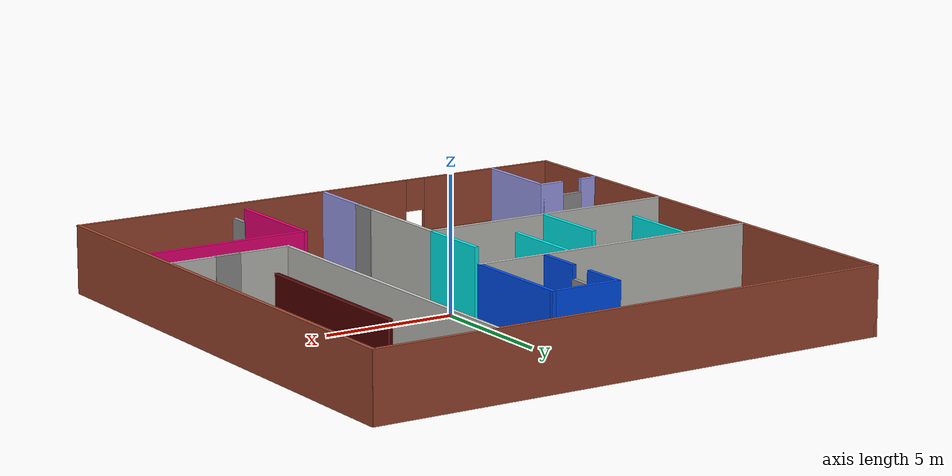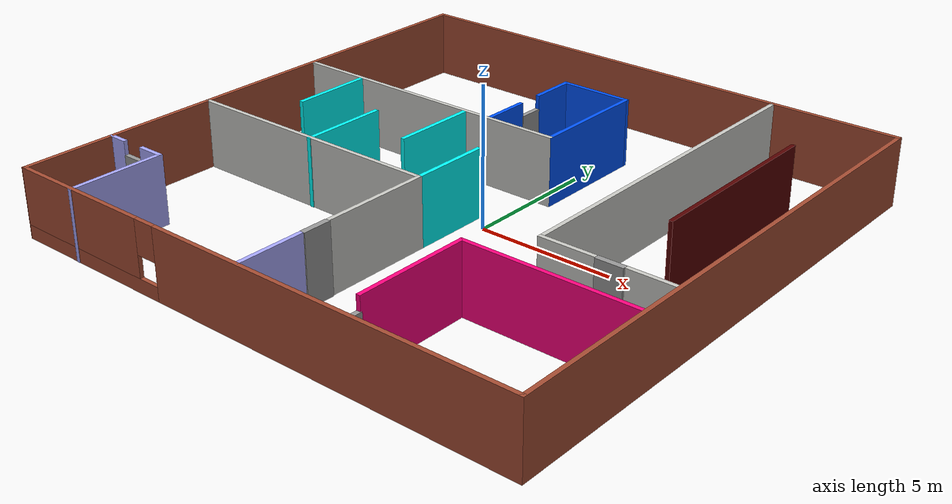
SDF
<?xml version='1.0'?>
<sdf version='1.6'>
  <model name='Building'>
    <pose frame=''>-0.603561 0.164235 0 0 -0 0</pose>
    <link name='Door_0'>
      <collision name='Door_0_Collision'>
        <geometry>
          <box>
            <size>0.972128 0.2 2.5</size>
          </box>
        </geometry>
        <pose frame=''>0 0 1.25 0 -0 0</pose>
      </collision>
      <visual name='Door_0_Visual'>
        <pose frame=''>0 0 1.25 0 -0 0</pose>
        <geometry>
          <box>
            <size>0.972128 0.2 2.5</size>
          </box>
        </geometry>
        <material>
          <script>
            <uri>file://media/materials/scripts/gazebo.material</uri>
            <name>Gazebo/Grey</name>
          </script>
        </material>
      </visual>
      <pose frame=''>7.70751 -3.24538 0 0 0 -3.13779</pose>
    </link>
    <link name='Door_1'>
      <collision name='Door_1_Collision'>
        <geometry>
          <box>
            <size>1.03118 0.2 2.5</size>
          </box>
        </geometry>
        <pose frame=''>0 0 1.25 0 -0 0</pose>
      </collision>
      <visual name='Door_1_Visual'>
        <pose frame=''>0 0 1.25 0 -0 0</pose>
        <geometry>
          <box>
            <size>1.03118 0.2 2.5</size>
          </box>
        </geometry>
        <material>
          <script>
            <uri>file://media/materials/scripts/gazebo.material</uri>
            <name>Gazebo/Grey</name>
          </script>
        </material>
      </visual>
      <pose frame=''>-0.048767 -6.92226 0 0 0 -1.57444</pose>
    </link>
    <link name='Door_2'>
      <collision name='Door_2_Collision'>
        <geometry>
          <box>
            <size>0.8 0.17 2</size>
          </box>
        </geometry>
        <pose frame=''>0 0 1 0 -0 0</pose>
      </collision>
      <visual name='Door_2_Visual'>
        <pose frame=''>0 0 1 0 -0 0</pose>
        <geometry>
          <box>
            <size>0.8 0.17 2</size>
          </box>
        </geometry>
        <material>
          <script>
            <uri>file://media/materials/scripts/gazebo.material</uri>
            <name>Gazebo/Grey</name>
          </script>
        </material>
      </visual>
      <pose frame=''>-8.84079 -6.58459 0 0 -0 0</pose>
    </link>
    <link name='Door_3'>
      <collision name='Door_3_Collision'>
        <geometry>
          <box>
            <size>0.9 0.17 2</size>
          </box>
        </geometry>
        <pose frame=''>0 0 1 0 -0 0</pose>
      </collision>
      <visual name='Door_3_Visual'>
        <pose frame=''>0 0 1 0 -0 0</pose>
        <geometry>
          <box>
            <size>0.9 0.17 2</size>
          </box>
        </geometry>
        <material>
          <script>
            <uri>file://media/materials/scripts/gazebo.material</uri>
            <name>Gazebo/Grey</name>
          </script>
        </material>
      </visual>
      <pose frame=''>-1.42795 4.80727 0 0 -0 1.55779</pose>
    </link>
    <link name='Door_4'>
      <collision name='Door_4_Collision'>
        <geometry>
          <box>
            <size>0.9 0.17 2</size>
          </box>
        </geometry>
        <pose frame=''>0 0 1 0 -0 0</pose>
      </collision>
      <visual name='Door_4_Visual'>
        <pose frame=''>0 0 1 0 -0 0</pose>
        <geometry>
          <box>
            <size>0.9 0.17 2</size>
          </box>
        </geometry>
        <material>
          <script>
            <uri>file://media/materials/scripts/gazebo.material</uri>
            <name>Gazebo/Grey</name>
          </script>
        </material>
      </visual>
      <pose frame=''>3.70998 -9.40953 0 0 -0 1.5725</pose>
    </link>
    <link name='Wall_23'>
      <collision name='Wall_23_Collision'>
        <geometry>
          <box>
            <size>20 0.15 2.5</size>
          </box>
        </geometry>
        <pose frame=''>0 0 1.25 0 -0 0</pose>
      </collision>
      <visual name='Wall_23_Visual'>
        <pose frame=''>0 0 1.25 0 -0 0</pose>
        <geometry>
          <box>
            <size>20 0.15 2.5</size>
          </box>
        </geometry>
        <material>
          <script>
            <uri>file://media/materials/scripts/gazebo.material</uri>
            <name>Gazebo/Bricks</name>
          </script>
          <ambient>1 1 1 1</ambient>
        </material>
      </visual>
      <pose frame=''>-9.93542 0.006571 0 0 -0 1.5708</pose>
    </link>
    <link name='Wall_28'>
      <collision name='Wall_28_Collision'>
        <geometry>
          <box>
            <size>20 0.15 2.5</size>
          </box>
        </geometry>
        <pose frame=''>0 0 1.25 0 -0 0</pose>
      </collision>
      <visual name='Wall_28_Visual'>
        <pose frame=''>0 0 1.25 0 -0 0</pose>
        <geometry>
          <box>
            <size>20 0.15 2.5</size>
          </box>
        </geometry>
        <material>
          <script>
            <uri>file://media/materials/scripts/gazebo.material</uri>
            <name>Gazebo/Bricks</name>
          </script>
          <ambient>1 1 1 1</ambient>
        </material>
      </visual>
      <pose frame=''>9.93542 0.005522 0 0 -0 1.5708</pose>
    </link>
    <link name='Wall_30'>
      <collision name='Wall_30_Collision'>
        <geometry>
          <box>
            <size>20 0.15 2.5</size>
          </box>
        </geometry>
        <pose frame=''>0 0 1.25 0 -0 0</pose>
      </collision>
      <visual name='Wall_30_Visual'>
        <pose frame=''>0 0 1.25 0 -0 0</pose>
        <geometry>
          <box>
            <size>20 0.15 2.5</size>
          </box>
        </geometry>
        <material>
          <script>
            <uri>file://media/materials/scripts/gazebo.material</uri>
            <name>Gazebo/Bricks</name>
          </script>
          <ambient>1 1 1 1</ambient>
        </material>
      </visual>
      <pose frame=''>-0.010419 9.93157 0 0 -0 0</pose>
    </link>
    <link name='Wall_32'>
      <pose frame=''>0.010419 -9.91948 0 0 -0 3.14159</pose>
      <visual name='Wall_32_Visual_0'>
        <pose frame=''>-3.18916 0 1.25 0 -0 0</pose>
        <geometry>
          <box>
            <size>13.6217 0.15 2.5</size>
          </box>
        </geometry>
        <material>
          <script>
            <uri>file://media/materials/scripts/gazebo.material</uri>
            <name>Gazebo/Bricks</name>
          </script>
          <ambient>1 1 1 1</ambient>
        </material>
      </visual>
      <collision name='Wall_32_Collision_0'>
        <geometry>
          <box>
            <size>13.6217 0.15 2.5</size>
          </box>
        </geometry>
        <pose frame=''>-3.18916 0 1.25 0 -0 0</pose>
      </collision>
      <visual name='Wall_32_Visual_1'>
        <pose frame=''>6.81084 0 0.25 0 -0 0</pose>
        <geometry>
          <box>
            <size>6.37833 0.15 0.5</size>
          </box>
        </geometry>
        <material>
          <script>
            <uri>file://media/materials/scripts/gazebo.material</uri>
            <name>Gazebo/Bricks</name>
          </script>
          <ambient>1 1 1 1</ambient>
        </material>
      </visual>
      <collision name='Wall_32_Collision_1'>
        <geometry>
          <box>
            <size>6.37833 0.15 0.5</size>
          </box>
        </geometry>
        <pose frame=''>6.81084 0 0.25 0 -0 0</pose>
      </collision>
      <visual name='Wall_32_Visual_2'>
        <pose frame=''>7.21084 0 1.5 0 -0 0</pose>
        <geometry>
          <box>
            <size>5.57833 0.15 2</size>
          </box>
        </geometry>
        <material>
          <script>
            <uri>file://media/materials/scripts/gazebo.material</uri>
            <name>Gazebo/Bricks</name>
          </script>
          <ambient>1 1 1 1</ambient>
        </material>
      </visual>
      <collision name='Wall_32_Collision_2'>
        <geometry>
          <box>
            <size>5.57833 0.15 2</size>
          </box>
        </geometry>
        <pose frame=''>7.21084 0 1.5 0 -0 0</pose>
      </collision>
      <visual name='Wall_32_Visual_3'>
        <pose frame=''>4.02168 0 1.9 0 -0 0</pose>
        <geometry>
          <box>
            <size>0.8 0.15 1.2</size>
          </box>
        </geometry>
        <material>
          <script>
            <uri>file://media/materials/scripts/gazebo.material</uri>
            <name>Gazebo/Bricks</name>
          </script>
          <ambient>1 1 1 1</ambient>
        </material>
      </visual>
      <collision name='Wall_32_Collision_3'>
        <geometry>
          <box>
            <size>0.8 0.15 1.2</size>
          </box>
        </geometry>
        <pose frame=''>4.02168 0 1.9 0 -0 0</pose>
      </collision>
    </link>
    <link name='Wall_34'>
      <collision name='Wall_34_Collision'>
        <geometry>
          <box>
            <size>13.25 0.15 2.5</size>
          </box>
        </geometry>
        <pose frame=''>0 0 1.25 0 -0 0</pose>
      </collision>
      <visual name='Wall_34_Visual'>
        <pose frame=''>0 0 1.25 0 -0 0</pose>
        <geometry>
          <box>
            <size>13.25 0.15 2.5</size>
          </box>
        </geometry>
        <material>
          <script>
            <uri>file://media/materials/scripts/gazebo.material</uri>
            <name>Gazebo/CeilingTiled</name>
          </script>
          <ambient>0.666667 0.666667 1 1</ambient>
        </material>
      </visual>
      <pose frame=''>5.2903 3.3163 0 0 0 -1.5708</pose>
    </link>
    <link name='Wall_35'>
      <collision name='Wall_35_Collision'>
        <geometry>
          <box>
            <size>2 0.15 2.5</size>
          </box>
        </geometry>
        <pose frame=''>0 0 1.25 0 -0 0</pose>
      </collision>
      <visual name='Wall_35_Visual'>
        <pose frame=''>0 0 1.25 0 -0 0</pose>
        <geometry>
          <box>
            <size>2 0.15 2.5</size>
          </box>
        </geometry>
        <material>
          <script>
            <uri>file://media/materials/scripts/gazebo.material</uri>
            <name>Gazebo/CeilingTiled</name>
          </script>
          <ambient>0.666667 0.666667 1 1</ambient>
        </material>
      </visual>
      <pose frame=''>6.2153 -3.2337 0 0 -0 0</pose>
    </link>
    <link name='Wall_37'>
      <collision name='Wall_37_Collision'>
        <geometry>
          <box>
            <size>1.75 0.15 2.5</size>
          </box>
        </geometry>
        <pose frame=''>0 0 1.25 0 -0 0</pose>
      </collision>
      <visual name='Wall_37_Visual'>
        <pose frame=''>0 0 1.25 0 -0 0</pose>
        <geometry>
          <box>
            <size>1.75 0.15 2.5</size>
          </box>
        </geometry>
        <material>
          <script>
            <uri>file://media/materials/scripts/gazebo.material</uri>
            <name>Gazebo/CeilingTiled</name>
          </script>
          <ambient>0.666667 0.666667 1 1</ambient>
        </material>
      </visual>
      <pose frame=''>9.07667 -3.21244 0 0 -0 0</pose>
    </link>
    <link name='Wall_39'>
      <collision name='Wall_39_Collision'>
        <geometry>
          <box>
            <size>10 0.15 2.5</size>
          </box>
        </geometry>
        <pose frame=''>0 0 1.25 0 -0 0</pose>
      </collision>
      <visual name='Wall_39_Visual'>
        <pose frame=''>0 0 1.25 0 -0 0</pose>
        <geometry>
          <box>
            <size>10 0.15 2.5</size>
          </box>
        </geometry>
        <material>
          <script>
            <uri>file://media/materials/scripts/gazebo.material</uri>
            <name>Gazebo/CeilingTiled</name>
          </script>
          <ambient>0.666667 0.666667 1 1</ambient>
        </material>
      </visual>
      <pose frame=''>-4.98053 -2.48727 0 0 -0 0</pose>
    </link>
    <link name='Wall_40'>
      <collision name='Wall_40_Collision'>
        <geometry>
          <box>
            <size>4 0.15 2.5</size>
          </box>
        </geometry>
        <pose frame=''>0 0 1.25 0 -0 0</pose>
      </collision>
      <visual name='Wall_40_Visual'>
        <pose frame=''>0 0 1.25 0 -0 0</pose>
        <geometry>
          <box>
            <size>4 0.15 2.5</size>
          </box>
        </geometry>
        <material>
          <script>
            <uri>file://media/materials/scripts/gazebo.material</uri>
            <name>Gazebo/CeilingTiled</name>
          </script>
          <ambient>0.666667 0.666667 1 1</ambient>
        </material>
      </visual>
      <pose frame=''>-0.055526 -4.41227 0 0 0 -1.5708</pose>
    </link>
    <link name='Wall_42'>
      <collision name='Wall_42_Collision'>
        <geometry>
          <box>
            <size>2.5 0.15 2.5</size>
          </box>
        </geometry>
        <pose frame=''>0 0 1.25 0 -0 0</pose>
      </collision>
      <visual name='Wall_42_Visual'>
        <pose frame=''>0 0 1.25 0 -0 0</pose>
        <geometry>
          <box>
            <size>2.5 0.15 2.5</size>
          </box>
        </geometry>
        <material>
          <script>
            <uri>file://media/materials/scripts/gazebo.material</uri>
            <name>Gazebo/Grey</name>
          </script>
          <ambient>0.666667 0.666667 1 1</ambient>
        </material>
      </visual>
      <pose frame=''>-0.065577 -8.66277 0 0 -0 1.5708</pose>
    </link>
    <link name='Wall_44'>
      <collision name='Wall_44_Collision'>
        <geometry>
          <box>
            <size>0.75 0.15 2.5</size>
          </box>
        </geometry>
        <pose frame=''>0 0 1.25 0 -0 0</pose>
      </collision>
      <visual name='Wall_44_Visual'>
        <pose frame=''>0 0 1.25 0 -0 0</pose>
        <geometry>
          <box>
            <size>0.75 0.15 2.5</size>
          </box>
        </geometry>
        <material>
          <script>
            <uri>file://media/materials/scripts/gazebo.material</uri>
            <name>Gazebo/Grey</name>
          </script>
          <ambient>0.666667 0.666667 1 1</ambient>
        </material>
      </visual>
      <pose frame=''>-9.60271 -6.58745 0 0 -0 0</pose>
    </link>
    <link name='Wall_46'>
      <collision name='Wall_46_Collision'>
        <geometry>
          <box>
            <size>1 0.15 2.5</size>
          </box>
        </geometry>
        <pose frame=''>0 0 1.25 0 -0 0</pose>
      </collision>
      <visual name='Wall_46_Visual'>
        <pose frame=''>0 0 1.25 0 -0 0</pose>
        <geometry>
          <box>
            <size>1 0.15 2.5</size>
          </box>
        </geometry>
        <material>
          <script>
            <uri>file://media/materials/scripts/gazebo.material</uri>
            <name>Gazebo/Grey</name>
          </script>
          <ambient>0.666667 0.666667 1 1</ambient>
        </material>
      </visual>
      <pose frame=''>-7.93389 -6.58157 0 0 -0 0</pose>
    </link>
    <link name='Wall_49'>
      <collision name='Wall_49_Collision'>
        <geometry>
          <box>
            <size>3.5 0.15 2.5</size>
          </box>
        </geometry>
        <pose frame=''>0 0 1.25 0 -0 0</pose>
      </collision>
      <visual name='Wall_49_Visual'>
        <pose frame=''>0 0 1.25 0 -0 0</pose>
        <geometry>
          <box>
            <size>3.5 0.15 2.5</size>
          </box>
        </geometry>
        <material>
          <script>
            <uri>file://media/materials/scripts/gazebo.material</uri>
            <name>Gazebo/Grey</name>
          </script>
          <ambient>0.666667 0.666667 1 1</ambient>
        </material>
      </visual>
      <pose frame=''>-7.50889 -8.25657 0 0 0 -1.5708</pose>
    </link>
    <link name='Wall_51'>
      <collision name='Wall_51_Collision'>
        <geometry>
          <box>
            <size>11.25 0.15 2.5</size>
          </box>
        </geometry>
        <pose frame=''>0 0 1.25 0 -0 0</pose>
      </collision>
      <visual name='Wall_51_Visual'>
        <pose frame=''>0 0 1.25 0 -0 0</pose>
        <geometry>
          <box>
            <size>11.25 0.15 2.5</size>
          </box>
        </geometry>
        <material>
          <script>
            <uri>file://media/materials/scripts/gazebo.material</uri>
            <name>Gazebo/CeilingTiled</name>
          </script>
          <ambient>0.666667 0.666667 1 1</ambient>
        </material>
      </visual>
      <pose frame=''>-4.37164 2.57907 0 0 -0 0</pose>
    </link>
    <link name='Wall_53'>
      <collision name='Wall_53_Collision'>
        <geometry>
          <box>
            <size>3 0.15 2.5</size>
          </box>
        </geometry>
        <pose frame=''>0 0 1.25 0 -0 0</pose>
      </collision>
      <visual name='Wall_53_Visual'>
        <pose frame=''>0 0 1.25 0 -0 0</pose>
        <geometry>
          <box>
            <size>3 0.15 2.5</size>
          </box>
        </geometry>
        <material>
          <script>
            <uri>file://media/materials/scripts/gazebo.material</uri>
            <name>Gazebo/Grey</name>
          </script>
          <ambient>0 1 1 1</ambient>
        </material>
      </visual>
      <pose frame=''>-7.3685 1.01193 0 0 0 -1.5708</pose>
    </link>
    <link name='Wall_55'>
      <collision name='Wall_55_Collision'>
        <geometry>
          <box>
            <size>3.25 0.15 2.5</size>
          </box>
        </geometry>
        <pose frame=''>0 0 1.25 0 -0 0</pose>
      </collision>
      <visual name='Wall_55_Visual'>
        <pose frame=''>0 0 1.25 0 -0 0</pose>
        <geometry>
          <box>
            <size>3.25 0.15 2.5</size>
          </box>
        </geometry>
        <material>
          <script>
            <uri>file://media/materials/scripts/gazebo.material</uri>
            <name>Gazebo/Grey</name>
          </script>
          <ambient>0 1 1 1</ambient>
        </material>
      </visual>
      <pose frame=''>-4.82357 -0.965361 0 0 -0 1.5708</pose>
    </link>
    <link name='Wall_57'>
      <collision name='Wall_57_Collision'>
        <geometry>
          <box>
            <size>3.25 0.15 2.5</size>
          </box>
        </geometry>
        <pose frame=''>0 0 1.25 0 -0 0</pose>
      </collision>
      <visual name='Wall_57_Visual'>
        <pose frame=''>0 0 1.25 0 -0 0</pose>
        <geometry>
          <box>
            <size>3.25 0.15 2.5</size>
          </box>
        </geometry>
        <material>
          <script>
            <uri>file://media/materials/scripts/gazebo.material</uri>
            <name>Gazebo/Grey</name>
          </script>
          <ambient>0 1 1 1</ambient>
        </material>
      </visual>
      <pose frame=''>-2.4506 0.990104 0 0 0 -1.5708</pose>
    </link>
    <link name='Wall_59'>
      <collision name='Wall_59_Collision'>
        <geometry>
          <box>
            <size>3 0.15 2.5</size>
          </box>
        </geometry>
        <pose frame=''>0 0 1.25 0 -0 0</pose>
      </collision>
      <visual name='Wall_59_Visual'>
        <pose frame=''>0 0 1.25 0 -0 0</pose>
        <geometry>
          <box>
            <size>3 0.15 2.5</size>
          </box>
        </geometry>
        <material>
          <script>
            <uri>file://media/materials/scripts/gazebo.material</uri>
            <name>Gazebo/Grey</name>
          </script>
          <ambient>0 1 1 1</ambient>
        </material>
      </visual>
      <pose frame=''>-0.055526 -1.06227 0 0 -0 1.5708</pose>
    </link>
    <link name='Wall_61'>
      <collision name='Wall_61_Collision'>
        <geometry>
          <box>
            <size>7.25 0.15 2.5</size>
          </box>
        </geometry>
        <pose frame=''>0 0 1.25 0 -0 0</pose>
      </collision>
      <visual name='Wall_61_Visual'>
        <pose frame=''>0 0 1.25 0 -0 0</pose>
        <geometry>
          <box>
            <size>7.25 0.15 2.5</size>
          </box>
        </geometry>
        <material>
          <script>
            <uri>file://media/materials/scripts/gazebo.material</uri>
            <name>Gazebo/Grey</name>
          </script>
          <ambient>0.333333 0 0 1</ambient>
        </material>
      </visual>
      <pose frame=''>7.58521 3.55151 0 0 0 -1.5708</pose>
    </link>
    <link name='Wall_63'>
      <collision name='Wall_63_Collision'>
        <geometry>
          <box>
            <size>4.5 0.15 2.5</size>
          </box>
        </geometry>
        <pose frame=''>0 0 1.25 0 -0 0</pose>
      </collision>
      <visual name='Wall_63_Visual'>
        <pose frame=''>0 0 1.25 0 -0 0</pose>
        <geometry>
          <box>
            <size>4.5 0.15 2.5</size>
          </box>
        </geometry>
        <material>
          <script>
            <uri>file://media/materials/scripts/gazebo.material</uri>
            <name>Gazebo/Grey</name>
          </script>
          <ambient>0 0.333333 1 1</ambient>
        </material>
      </visual>
      <pose frame=''>1.17836 4.75407 0 0 -0 1.5708</pose>
    </link>
    <link name='Wall_64'>
      <collision name='Wall_64_Collision'>
        <geometry>
          <box>
            <size>2.75 0.15 2.5</size>
          </box>
        </geometry>
        <pose frame=''>0 0 1.25 0 -0 0</pose>
      </collision>
      <visual name='Wall_64_Visual'>
        <pose frame=''>0 0 1.25 0 -0 0</pose>
        <geometry>
          <box>
            <size>2.75 0.15 2.5</size>
          </box>
        </geometry>
        <material>
          <script>
            <uri>file://media/materials/scripts/gazebo.material</uri>
            <name>Gazebo/Grey</name>
          </script>
          <ambient>0 0.333333 1 1</ambient>
        </material>
      </visual>
      <pose frame=''>-0.12164 6.92907 0 0 -0 3.14159</pose>
    </link>
    <link name='Wall_65'>
      <collision name='Wall_65_Collision'>
        <geometry>
          <box>
            <size>1.75 0.15 2.5</size>
          </box>
        </geometry>
        <pose frame=''>0 0 1.25 0 -0 0</pose>
      </collision>
      <visual name='Wall_65_Visual'>
        <pose frame=''>0 0 1.25 0 -0 0</pose>
        <geometry>
          <box>
            <size>1.75 0.15 2.5</size>
          </box>
        </geometry>
        <material>
          <script>
            <uri>file://media/materials/scripts/gazebo.material</uri>
            <name>Gazebo/Grey</name>
          </script>
          <ambient>0 0.333333 1 1</ambient>
        </material>
      </visual>
      <pose frame=''>-1.42164 6.12907 0 0 0 -1.5708</pose>
    </link>
    <link name='Wall_67'>
      <collision name='Wall_67_Collision'>
        <geometry>
          <box>
            <size>1.75 0.15 2.5</size>
          </box>
        </geometry>
        <pose frame=''>0 0 1.25 0 -0 0</pose>
      </collision>
      <visual name='Wall_67_Visual'>
        <pose frame=''>0 0 1.25 0 -0 0</pose>
        <geometry>
          <box>
            <size>1.75 0.15 2.5</size>
          </box>
        </geometry>
        <material>
          <script>
            <uri>file://media/materials/scripts/gazebo.material</uri>
            <name>Gazebo/Grey</name>
          </script>
          <ambient>0 0.333333 1 1</ambient>
        </material>
      </visual>
      <pose frame=''>-1.4314 3.49864 0 0 -0 1.5708</pose>
    </link>
    <link name='Wall_71'>
      <collision name='Wall_71_Collision'>
        <geometry>
          <box>
            <size>6.25 0.15 2.5</size>
          </box>
        </geometry>
        <pose frame=''>0 0 1.25 0 -0 0</pose>
      </collision>
      <visual name='Wall_71_Visual'>
        <pose frame=''>0 0 1.25 0 -0 0</pose>
        <geometry>
          <box>
            <size>6.25 0.15 2.5</size>
          </box>
        </geometry>
        <material>
          <script>
            <uri>file://media/materials/scripts/gazebo.material</uri>
            <name>Gazebo/Grey</name>
          </script>
          <ambient>1 0 0.498039 1</ambient>
        </material>
      </visual>
      <pose frame=''>6.75472 -4.83878 0 0 -0 0</pose>
    </link>
    <link name='Wall_73'>
      <collision name='Wall_73_Collision'>
        <geometry>
          <box>
            <size>4.25 0.15 2.5</size>
          </box>
        </geometry>
        <pose frame=''>0 0 1.25 0 -0 0</pose>
      </collision>
      <visual name='Wall_73_Visual'>
        <pose frame=''>0 0 1.25 0 -0 0</pose>
        <geometry>
          <box>
            <size>4.25 0.15 2.5</size>
          </box>
        </geometry>
        <material>
          <script>
            <uri>file://media/materials/scripts/gazebo.material</uri>
            <name>Gazebo/Grey</name>
          </script>
          <ambient>1 0 0.498039 1</ambient>
        </material>
      </visual>
      <pose frame=''>3.70472 -6.88878 0 0 0 -1.5708</pose>
    </link>
    <static>1</static>
  </model>
</sdf>
